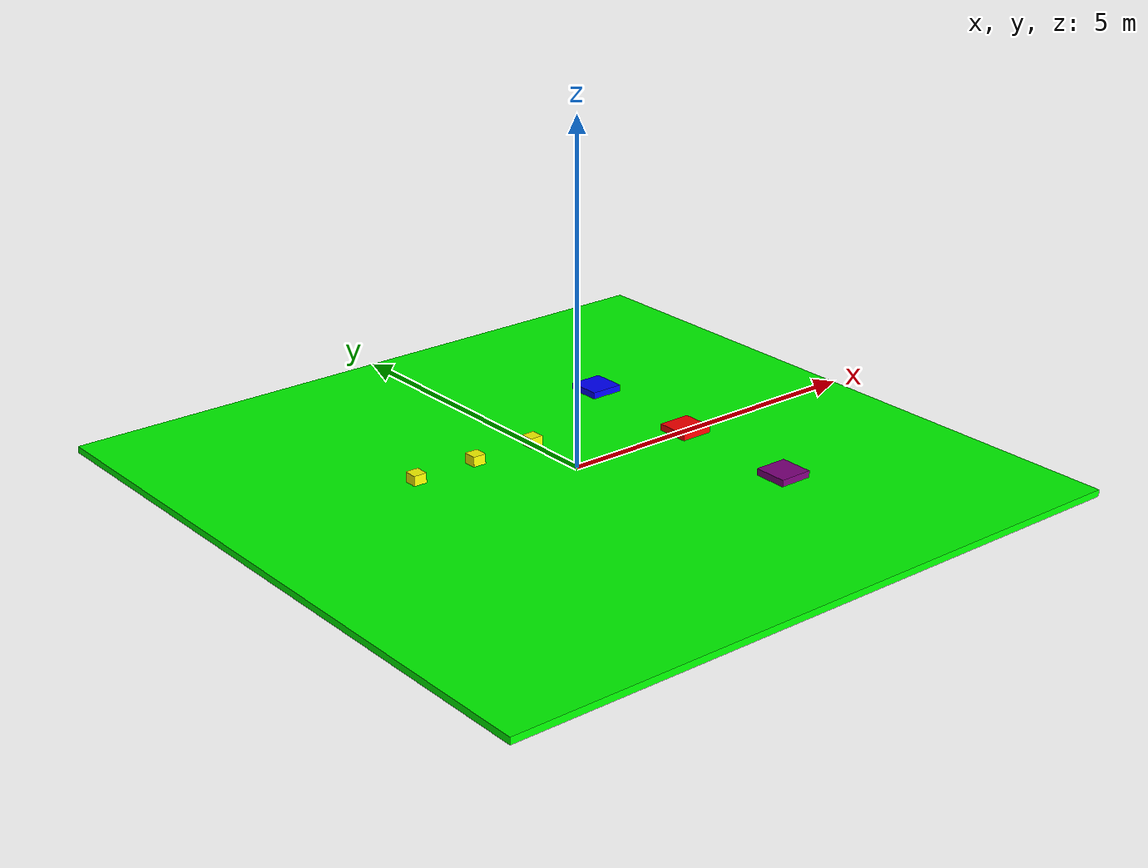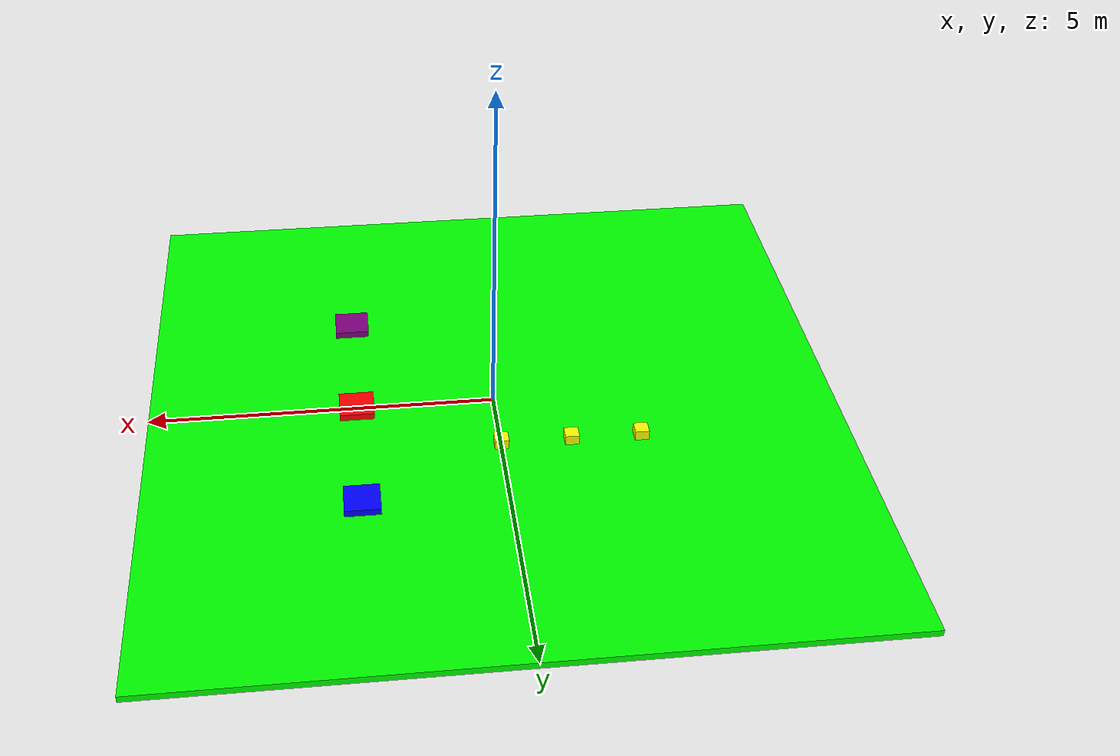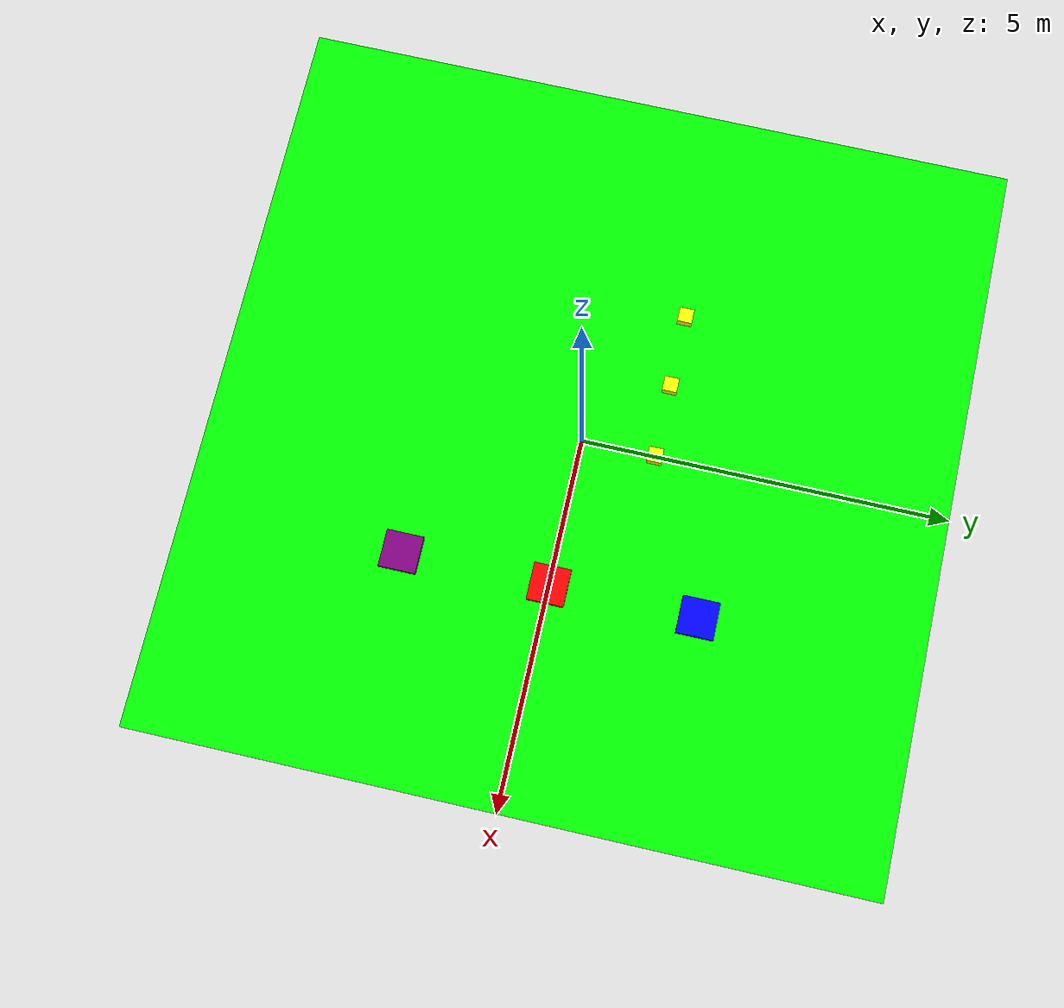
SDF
<?xml version="1.0"?>
<sdf version="1.9">
  <world name="delivery_world">
    <!-- Ground Plane (green, as you set) -->
    <model name="ground_plane">
      <static>true</static>
      <pose>0 0 -0.05 0 0 0</pose>
      <link name="link">
        <collision name="collision">
          <geometry>
            <box>
              <size>10 10 0.1</size>
            </box>
          </geometry>
        </collision>
        <visual name="visual">
          <geometry>
            <box>
              <size>10 10 0.1</size>
            </box>
          </geometry>
          <material>
            <ambient>0 1 0 1</ambient>
            <diffuse>0 1 0 1</diffuse>
          </material>
        </visual>
      </link>
    </model>

    <!-- Package 1 (for Drone 0) -->
    <model name="package_0">
      <static>true</static>
      <pose>-2 1 0.05 0 0 0</pose> <!-- Next to Drone 0, 1 m north -->
      <link name="link">
        <collision name="collision">
          <geometry>
            <box>
              <size>0.2 0.2 0.2</size>
            </box>
          </geometry>
        </collision>
        <visual name="visual">
          <geometry>
            <box>
              <size>0.2 0.2 0.2</size>
            </box>
          </geometry>
          <material>
            <ambient>1 1 0 1</ambient> <!-- Yellow -->
            <diffuse>1 1 0 1</diffuse>
          </material>
        </visual>
      </link>
    </model>

    <!-- Package 2 (for Drone 1) -->
    <model name="package_1">
      <static>true</static>
      <pose>-1 1 0.05 0 0 0</pose> <!-- Next to Drone 1 -->
      <link name="link">
        <collision name="collision">
          <geometry>
            <box>
              <size>0.2 0.2 0.2</size>
            </box>
          </geometry>
        </collision>
        <visual name="visual">
          <geometry>
            <box>
              <size>0.2 0.2 0.2</size>
            </box>
          </geometry>
          <material>
            <ambient>1 1 0 1</ambient>
            <diffuse>1 1 0 1</diffuse>
          </material>
        </visual>
      </link>
    </model>

    <!-- Package 3 (for Drone 2) -->
    <model name="package_2">
      <static>true</static>
      <pose>0 1 0.05 0 0 0</pose> <!-- Next to Drone 2 -->
      <link name="link">
        <collision name="collision">
          <geometry>
            <box>
              <size>0.2 0.2 0.2</size>
            </box>
          </geometry>
        </collision>
        <visual name="visual">
          <geometry>
            <box>
              <size>0.2 0.2 0.2</size>
            </box>
          </geometry>
          <material>
            <ambient>1 1 0 1</ambient>
            <diffuse>1 1 0 1</diffuse>
          </material>
        </visual>
      </link>
    </model>

    <!-- Delivery Location 0 (for Drone 0) -->
    <model name="dropoff_0">
      <static>true</static>
      <pose>2 0 0.05 0 0 0</pose> <!-- Right of origin -->
      <link name="link">
        <collision name="collision">
          <geometry>
            <box>
              <size>0.5 0.5 0.1</size>
            </box>
          </geometry>
        </collision>
        <visual name="visual">
          <geometry>
            <box>
              <size>0.5 0.5 0.1</size>
            </box>
          </geometry>
          <material>
            <ambient>1 0 0 1</ambient> <!-- Red -->
            <diffuse>1 0 0 1</diffuse>
          </material>
        </visual>
      </link>
    </model>

    <!-- Delivery Location 1 (for Drone 1) -->
    <model name="dropoff_1">
      <static>true</static>
      <pose>2 2 0.05 0 0 0</pose> <!-- Northeast -->
      <link name="link">
        <collision name="collision">
          <geometry>
            <box>
              <size>0.5 0.5 0.1</size>
            </box>
          </geometry>
        </collision>
        <visual name="visual">
          <geometry>
            <box>
              <size>0.5 0.5 0.1</size>
            </box>
          </geometry>
          <material>
            <ambient>0 0 1 1</ambient> <!-- Blue -->
            <diffuse>0 0 1 1</diffuse>
          </material>
        </visual>
      </link>
    </model>

    <!-- Delivery Location 2 (for Drone 2) -->
    <model name="dropoff_2">
      <static>true</static>
      <pose>2 -2 0.05 0 0 0</pose> <!-- Southeast -->
      <link name="link">
        <collision name="collision">
          <geometry>
            <box>
              <size>0.5 0.5 0.1</size>
            </box>
          </geometry>
        </collision>
        <visual name="visual">
          <geometry>
            <box>
              <size>0.5 0.5 0.1</size>
            </box>
          </geometry>
          <material>
            <ambient>0.5 0 0.5 1</ambient> <!-- Purple -->
            <diffuse>0.5 0 0.5 1</diffuse>
          </material>
        </visual>
      </link>
    </model>
        <!-- Plugins for applying forces to drones -->
        <!-- Plugins for applying forces to drones -->
        <!-- Plugins for velocity control of drones -->
        <!-- Plugins for velocity control of drones -->
  </world>
</sdf>
